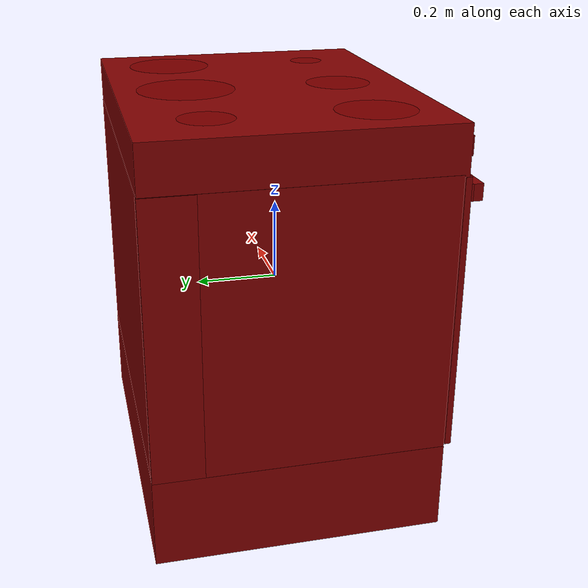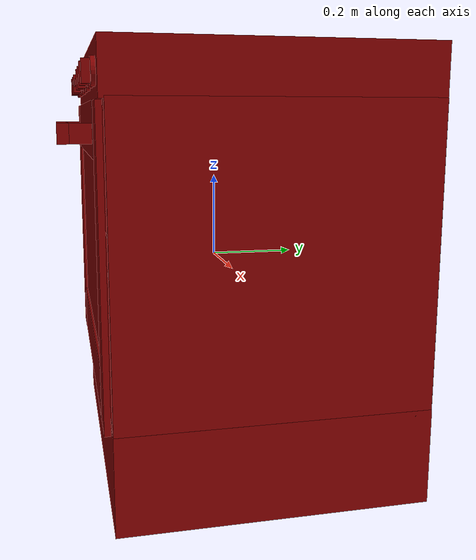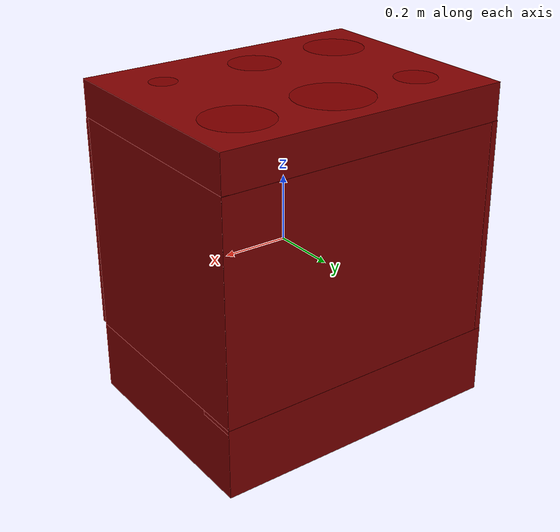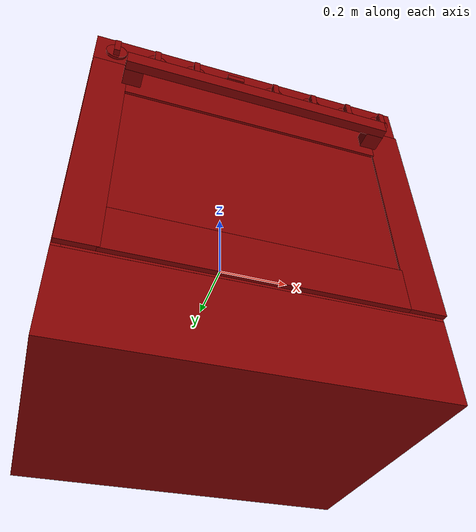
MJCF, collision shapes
<?xml version='1.0' encoding='UTF-8'?>
<mujoco model="model">
  <option timestep="0.002" gravity="0.0 0.0 -9.81"/>
  <compiler angle="radian"/>
  <asset>
    <mesh file="visuals/knob_front_center.obj" name="knob_front_center_vis"/>
    <mesh file="visuals/knob_front_left.obj" name="knob_front_left_vis"/>
    <mesh file="visuals/knob_front_right.obj" name="knob_front_right_vis"/>
    <mesh file="visuals/knob_rear_center.obj" name="knob_rear_center_vis"/>
    <mesh file="visuals/knob_rear_left.obj" name="knob_rear_left_vis"/>
    <mesh file="visuals/knob_rear_right.obj" name="knob_rear_right_vis"/>
    <mesh file="visuals/Body001.obj" name="Body001_vis"/>
    <mesh file="visuals/Door001.obj" name="Door001_vis"/>
    <mesh file="visuals/Door001_Clear.obj" name="Door001_Clear_vis"/>
    <mesh file="visuals/Knob001.obj" name="Knob001_vis"/>
    <mesh file="visuals/Knob002.obj" name="Knob002_vis"/>
    <mesh file="visuals/Shelf001.obj" name="Shelf001_vis"/>
    <texture file="visuals/T_BC001.png" name="Body001_material" type="2d"/>
    <material name="Body001_material" rgba="1 1 1 1.0" texture="Body001_material" shininess="0.141421377658844" specular="2"/>
    <texture file="visuals/T_BC001.png" name="knob_front_center_material" type="2d"/>
    <material name="knob_front_center_material" rgba="1 1 1 1.0" texture="knob_front_center_material" shininess="0.141421377658844" specular="0.3103448502657381"/>
    <texture file="visuals/T_BC001.png" name="knob_front_left_material" type="2d"/>
    <material name="knob_front_left_material" rgba="1 1 1 1.0" texture="knob_front_left_material" shininess="0.141421377658844" specular="0.3103448502657381"/>
    <texture file="visuals/T_BC001.png" name="knob_front_right_material" type="2d"/>
    <material name="knob_front_right_material" rgba="1 1 1 1.0" texture="knob_front_right_material" shininess="0.141421377658844" specular="0.3103448502657381"/>
    <texture file="visuals/T_BC001.png" name="knob_rear_center_material" type="2d"/>
    <material name="knob_rear_center_material" rgba="1 1 1 1.0" texture="knob_rear_center_material" shininess="0.141421377658844" specular="0.3103448502657381"/>
    <texture file="visuals/T_BC001.png" name="knob_rear_left_material" type="2d"/>
    <material name="knob_rear_left_material" rgba="1 1 1 1.0" texture="knob_rear_left_material" shininess="0.141421377658844" specular="0.3103448502657381"/>
    <texture file="visuals/T_BC001.png" name="knob_rear_right_material" type="2d"/>
    <material name="knob_rear_right_material" rgba="1 1 1 1.0" texture="knob_rear_right_material" shininess="0.141421377658844" specular="0.3103448502657381"/>
    <texture file="visuals/T_BC001.png" name="Door001_material" type="2d"/>
    <material name="Door001_material" rgba="1 1 1 1.0" texture="Door001_material" shininess="0.141421377658844" specular="0.3103448502657381"/>
    <texture file="visuals/T_BC001.png" name="Door001_Clear_material" type="2d"/>
    <material name="Door001_Clear_material" rgba="1 1 1 0.5" texture="Door001_Clear_material" shininess="0.5" specular="1"/>
    <texture file="visuals/T_BC001.png" name="Knob001_material" type="2d"/>
    <material name="Knob001_material" rgba="1 1 1 1.0" texture="Knob001_material" shininess="0.141421377658844" specular="0.3103448502657381"/>
    <texture file="visuals/T_BC001.png" name="Knob002_material" type="2d"/>
    <material name="Knob002_material" rgba="1 1 1 1.0" texture="Knob002_material" shininess="0.141421377658844" specular="0.3103448502657381"/>
    <texture file="visuals/T_BC001.png" name="Shelf001_material" type="2d"/>
    <material name="Shelf001_material" rgba="1 1 1 1.0" texture="Shelf001_material" shininess="0.141421377658844" specular="2"/>
  </asset>
  <default>
    <default class="visual">
      <geom conaffinity="0" contype="0" group="1" type="mesh"/>
    </default>
    <default class="collision">
      <geom group="0" rgba="0.5 0 0 0.5"/>
    </default>
    <default class="spawn">
      <geom group="0" rgba="1 1 1 0.5" contype="0" conaffinity="0"/>
      <site group="0" rgba="1 1 1 0.5"/>
    </default>
    <default class="region">
      <geom group="1" conaffinity="0" contype="0" rgba="0 1 0 0"/>
    </default>
  </default>
  <worldbody>
    <body>
      <body name="object">
        <geom mesh="Body001_vis" type="mesh" solimp="0.998 0.998 0.001" solref="0.001 1" friction="0.95 0.3 0.1" class="visual" material="Body001_material"/>
        <geom class="collision" type="box" pos="0.000283 0.036348 0.435147" size="0.4514167308807373 0.34686827659606934 0.05753197520971298" quat="1.0 0.0 0.0 0.0"/>
        <geom class="collision" type="box" pos="-0.441532 0.042445 0.052287" size="0.010310623794794083 0.34188374876976013 0.3301837742328644" quat="1.0 0.0 0.0 0.0"/>
        <geom class="collision" type="box" pos="0.441500 0.042164 0.052287" size="0.010346956551074982 0.3416036367416382 0.3301837742328644" quat="1.0 0.0 0.0 0.0"/>
        <geom class="collision" type="box" pos="-0.000155 0.042396 -0.385780" size="0.45190566778182983 0.34237968921661377 0.1077851951122284" quat="1.0 0.0 0.0 0.0"/>
        <geom class="collision" type="box" pos="-0.000155 0.323834 0.045322" size="0.45190566778182983 0.06021558493375778 0.3362036645412445" quat="1.0 0.0 0.0 0.0"/>
        <geom class="collision" type="box" pos="-0.422283 -0.019890 0.043516" size="0.011850233189761639 0.2790742814540863 0.005543030332773924" quat="1.0 0.0 0.0 0.0"/>
        <geom class="collision" type="box" pos="0.421042 -0.019890 0.043516" size="0.011850247159600258 0.2788083553314209 0.005543030332773924" quat="1.0 0.0 0.0 0.0"/>
        <geom class="collision" type="box" pos="-0.000541 0.041467 -0.269060" size="0.4329325556755066 0.3408835530281067 0.008406330831348896" quat="1.0 0.0 0.0 0.0"/>
        <geom class="collision" type="box" pos="-0.000541 0.041467 0.374036" size="0.4329325556755066 0.3408835530281067 0.008406330831348896" quat="1.0 0.0 0.0 0.0"/>
        <body name="knob_front_center">
          <joint axis="0.0 -1.0 0.0" pos="-0.171152 -0.321157 0.428654" limited="true" name="knob_front_center_joint" range="0.0 3.141592653589793" type="hinge" damping="0.05" armature="0.001"/>
          <geom mesh="knob_front_center_vis" type="mesh" solimp="0.998 0.998 0.001" solref="0.001 1" friction="0.95 0.3 0.1" class="visual" material="knob_front_center_material"/>
          <geom class="collision" type="cylinder" pos="-0.170941 -0.315525 0.428817" size="0.028262391686439514 0.00432845251634717" quat="0.7071068286895752 0.7071067690849304 0.0 0.0"/>
          <geom class="collision" type="box" pos="-0.171344 -0.326882 0.429409" size="0.008009856566786766 0.010289488360285759 0.02292594127357006" quat="1.0 0.0 0.0 0.0" name="knob_front_center_main"/>
        </body>
        <body name="knob_front_left">
          <joint axis="0.0 -1.0 0.0" pos="-0.393358 -0.321157 0.428654" limited="true" name="knob_front_left_joint" range="0.0 3.141592653589793" type="hinge" damping="0.05" armature="0.001"/>
          <geom mesh="knob_front_left_vis" type="mesh" solimp="0.998 0.998 0.001" solref="0.001 1" friction="0.95 0.3 0.1" class="visual" material="knob_front_left_material"/>
          <geom class="collision" type="cylinder" pos="-0.393501 -0.316086 0.428546" size="0.028508616611361504 0.003767132991924882" quat="0.7071068286895752 0.7071067690849304 0.0 0.0"/>
          <geom class="collision" type="box" pos="-0.393426 -0.328644 0.429414" size="0.007912068627774715 0.008527922444045544 0.02264605090022087" quat="1.0 0.0 0.0 0.0" name="knob_front_left_main"/>
        </body>
        <body name="knob_front_right">
          <joint axis="0.0 -1.0 0.0" pos="0.402599 -0.321157 0.427577" limited="true" name="knob_front_right_joint" range="0.0 3.141592653589793" type="hinge" damping="0.05" armature="0.001"/>
          <geom mesh="knob_front_right_vis" type="mesh" solimp="0.998 0.998 0.001" solref="0.001 1" friction="0.95 0.3 0.1" class="visual" material="knob_front_right_material"/>
          <geom class="collision" type="cylinder" pos="0.402231 -0.316193 0.427683" size="0.028150364756584167 0.004574283491820097" quat="0.7071068286895752 0.7071067690849304 0.0 0.0"/>
          <geom class="collision" type="box" pos="0.402524 -0.327386 0.427862" size="0.007890043780207634 0.010026584379374981 0.022582992911338806" quat="1.0 0.0 0.0 0.0" name="knob_front_right_main"/>
        </body>
        <body name="knob_rear_center">
          <joint axis="0.0 -1.0 0.0" pos="0.181792 -0.321157 0.427361" limited="true" name="knob_rear_center_joint" range="0.0 3.141592653589793" type="hinge" damping="0.05" armature="0.001"/>
          <geom mesh="knob_rear_center_vis" type="mesh" solimp="0.998 0.998 0.001" solref="0.001 1" friction="0.95 0.3 0.1" class="visual" material="knob_rear_center_material"/>
          <geom class="collision" type="cylinder" pos="0.181732 -0.315789 0.427348" size="0.02857975848019123 0.004241303075104952" quat="0.7071068286895752 0.7071067690849304 0.0 0.0"/>
          <geom class="collision" type="box" pos="0.181754 -0.326882 0.427587" size="0.007984244264662266 0.010342340916395187 0.022852517664432526" quat="1.0 0.0 0.0 0.0" name="knob_rear_center_main"/>
        </body>
        <body name="knob_rear_left">
          <joint axis="0.0 -1.0 0.0" pos="-0.282249 -0.321157 0.428654" limited="true" name="knob_rear_left_joint" range="0.0 3.141592653589793" type="hinge" damping="0.05" armature="0.001"/>
          <geom mesh="knob_rear_left_vis" type="mesh" solimp="0.998 0.998 0.001" solref="0.001 1" friction="0.95 0.3 0.1" class="visual" material="knob_rear_left_material"/>
          <geom class="collision" type="cylinder" pos="-0.281939 -0.315525 0.428817" size="0.028164124116301537 0.00432845251634717" quat="0.7071068286895752 0.7071067690849304 0.0 0.0"/>
          <geom class="collision" type="box" pos="-0.282394 -0.326865 0.429098" size="0.008049705065786839 0.010342087596654892 0.02303999662399292" quat="1.0 0.0 0.0 0.0" name="knob_rear_left_main"/>
        </body>
        <body name="knob_rear_right">
          <joint axis="0.0 -1.0 0.0" pos="0.293686 -0.321157 0.428654" limited="true" name="knob_rear_right_joint" range="0.0 3.141592653589793" type="hinge" damping="0.05" armature="0.001"/>
          <geom mesh="knob_rear_right_vis" type="mesh" solimp="0.998 0.998 0.001" solref="0.001 1" friction="0.95 0.3 0.1" class="visual" material="knob_rear_right_material"/>
          <geom class="collision" type="cylinder" pos="0.293782 -0.315574 0.428716" size="0.028246823698282242 0.004359787795692682" quat="0.7071068286895752 0.7071067690849304 0.0 0.0"/>
          <geom class="collision" type="box" pos="0.293775 -0.326773 0.429406" size="0.00819138903170824 0.010637160390615463 0.023445526137948036" quat="1.0 0.0 0.0 0.0" name="knob_rear_right_main"/>
        </body>
        <body name="Door001">
          <joint axis="1.0 0.0 0.0" pos="-0.000091 -0.301948 -0.273160" limited="true" name="Door001_joint" range="0.0 1.5707963267948966" type="hinge" damping="1" frictionloss="1" armature=".01" stiffness="5" springref="-1"/>
          <geom mesh="Door001_vis" type="mesh" solimp="0.998 0.998 0.001" solref="0.001 1" friction="0.95 0.3 0.1" class="visual" material="Door001_material"/>
          <geom class="collision" type="box" pos="-0.402404 -0.310442 0.051325" size="0.04731027036905289 0.007200075779110193 0.32530272006988525" quat="1.0 0.0 0.0 0.0"/>
          <geom class="collision" type="box" pos="-0.000339 -0.373175 0.312381" size="0.36537522077560425 0.012222813442349434 0.02002202905714512" quat="1.0 0.0 0.0 0.0"/>
          <geom class="collision" type="box" pos="-0.342281 -0.340228 0.312381" size="0.024370135739445686 0.021874738857150078 0.020021969452500343" quat="1.0 0.0 0.0 0.0"/>
          <geom class="collision" type="box" pos="0.341514 -0.340228 0.312381" size="0.024365918710827827 0.021874751895666122 0.020021984353661537" quat="1.0 0.0 0.0 0.0"/>
          <geom class="collision" type="box" pos="0.401618 -0.309924 0.051109" size="0.048891905695199966 0.006682900711894035 0.32441654801368713" quat="1.0 0.0 0.0 0.0"/>
          <geom class="collision" type="box" pos="-0.002426 -0.309765 0.319263" size="0.35925033688545227 0.007834212854504585 0.05718306452035904" quat="1.0 0.0 0.0 0.0"/>
          <geom class="collision" type="box" pos="-0.002426 -0.310021 -0.216252" size="0.35925033688545227 0.006779652088880539 0.05810556933283806" quat="1.0 0.0 0.0 0.0"/>
          <body name="Door001_Clear">
            <geom mesh="Door001_Clear_vis" type="mesh" solimp="0.998 0.998 0.001" solref="0.001 1" friction="0.95 0.3 0.1" class="visual" material="Door001_Clear_material"/>
            <geom class="collision" type="box" pos="0.000000 -0.309736 0.049388" size="0.3598848581314087 0.0016330404905602336 0.21378108859062195" quat="1.0 0.0 0.0 0.0"/>
          </body>
        </body>
        <body name="Knob001">
          <joint axis="0.0 1.0 0.0" pos="-0.058063 -0.321157 0.427147" limited="true" name="Knob001_joint" range="0.0 5.270894341022875" type="hinge" damping="0.05" armature="0.001"/>
          <geom mesh="Knob001_vis" type="mesh" solimp="0.998 0.998 0.001" solref="0.001 1" friction="0.95 0.3 0.1" class="visual" material="Knob001_material"/>
          <geom class="collision" type="cylinder" pos="-0.058224 -0.315508 0.426953" size="0.028487300500273705 0.004368196707218885" quat="0.7071068286895752 0.7071067690849304 0.0 0.0"/>
          <geom class="collision" type="box" pos="-0.057555 -0.326677 0.427013" size="0.0236478541046381 0.01074894703924656 0.008262105286121368" quat="1.0 0.0 0.0 0.0"/>
        </body>
        <body name="Knob002">
          <joint axis="0.0 1.0 0.0" pos="0.064063 -0.321157 0.428019" limited="true" name="Knob002_joint" range="0.0 5.619960191421741" type="hinge" damping="0.05" armature="0.001"/>
          <geom mesh="Knob002_vis" type="mesh" solimp="0.998 0.998 0.001" solref="0.001 1" friction="0.95 0.3 0.1" class="visual" material="Knob002_material"/>
          <geom class="collision" type="cylinder" pos="0.063880 -0.315753 0.427824" size="0.02810702659189701 0.00420789560303092" quat="0.7071068286895752 0.7071067690849304 0.0 0.0"/>
          <geom class="collision" type="box" pos="0.063999 -0.326882 0.428394" size="0.007934452965855598 0.01033630408346653 0.022710131481289864" quat="1.0 0.0 0.0 0.0"/>
        </body>
        <body name="Shelf001">
          <joint axis="0.0 -1.0 0.0" pos="-0.000861 -0.019890 0.052418" limited="true" name="Shelf001_joint" range="0.0 0.42" type="slide" damping="1" frictionloss="1" armature=".01" stiffness="0.05"/>
          <geom mesh="Shelf001_vis" type="mesh" solimp="0.998 0.998 0.001" solref="0.001 1" friction="0.95 0.3 0.1" class="visual" material="Shelf001_material"/>
          <geom class="collision" type="box" pos="-0.000847 -0.019890 0.057026" size="0.42225250601768494 0.25453394651412964 0.005543030332773924" quat="1.0 0.0 0.0 0.0"/>
        </body>
        <geom class="region" name="reg_int" type="box" pos="-0.0004850000000000132 -0.01599700000000001 0.052000500000000005" size="0.432373 0.28393 0.3127515"/>
        <site type="cylinder" rgba="0.5 0 0 0.5" size="0.09238609671592712 0.0001" pos="-0.296181 -0.152852 0.493173" name="burner_on_front_left"/>
        <site type="cylinder" rgba="0.5 0 0 0.5" size="0.06293663382530212 0.0001" pos="-0.293615 0.216044 0.493173" name="burner_on_rear_left"/>
        <site type="cylinder" rgba="0.5 0 0 0.5" size="0.04129135236144066 0.0001" pos="0.290677 -0.152742 0.494054" name="burner_on_front_right"/>
        <site type="cylinder" rgba="0.5 0 0 0.5" size="0.1018490120768547 0.0001" pos="0.293494 0.216145 0.494054" name="burner_on_rear_right"/>
        <site type="cylinder" rgba="0.5 0 0 0.5" size="0.07729882746934891 0.0001" pos="-0.008484 -0.152822 0.494011" name="burner_on_front_center"/>
        <site type="cylinder" rgba="0.5 0 0 0.5" size="0.11592957377433777 0.0001" pos="-0.005520 0.216103 0.494011" name="burner_on_rear_center"/>
        <site name="burner_front_left_place_site" type="cylinder" rgba="0.5 0 0 0" size="0.09238609671592712 4.999999509891495e-05" pos="-0.296181 -0.152852 0.493173"/>
        <site name="burner_rear_left_place_site" type="cylinder" rgba="0.5 0 0 0" size="0.06293663382530212 4.999999509891495e-05" pos="-0.293615 0.216044 0.493173"/>
        <site name="burner_front_right_place_site" type="cylinder" rgba="0.5 0 0 0" size="0.04129135236144066 4.999999509891495e-05" pos="0.290677 -0.152742 0.494054"/>
        <site name="burner_rear_right_place_site" type="cylinder" rgba="0.5 0 0 0" size="0.1018490120768547 4.999999509891495e-05" pos="0.293494 0.216145 0.494054"/>
        <site name="burner_front_center_place_site" type="cylinder" rgba="0.5 0 0 0" size="0.07729882746934891 4.999999509891495e-05" pos="-0.008484 -0.152822 0.494011"/>
        <site name="burner_rear_center_place_site" type="cylinder" rgba="0.5 0 0 0" size="0.11592957377433777 4.999999509891495e-05" pos="-0.005520 0.216103 0.494011"/>
        <geom class="region" name="reg_main" type="box" pos="0.0 0.03355050000000001 -1.9999999999992246e-05" size="0.452465 0.3513585 0.49405299999999996"/>
      </body>
    </body>
  </worldbody>
  <actuator>
    <motor name="knob_front_center_joint_actuator" joint="knob_front_center_joint" gear="10"/>
    <motor name="knob_front_left_joint_actuator" joint="knob_front_left_joint" gear="10"/>
    <motor name="knob_front_right_joint_actuator" joint="knob_front_right_joint" gear="10"/>
    <motor name="knob_rear_center_joint_actuator" joint="knob_rear_center_joint" gear="10"/>
    <motor name="knob_rear_left_joint_actuator" joint="knob_rear_left_joint" gear="10"/>
    <motor name="knob_rear_right_joint_actuator" joint="knob_rear_right_joint" gear="10"/>
    <motor name="Door001_joint_actuator" joint="Door001_joint" gear="50"/>
    <motor name="Knob001_joint_actuator" joint="Knob001_joint" gear="50"/>
    <motor name="Knob002_joint_actuator" joint="Knob002_joint" gear="50"/>
    <motor name="Shelf001_joint_actuator" joint="Shelf001_joint" gear="50"/>
  </actuator>
</mujoco>
